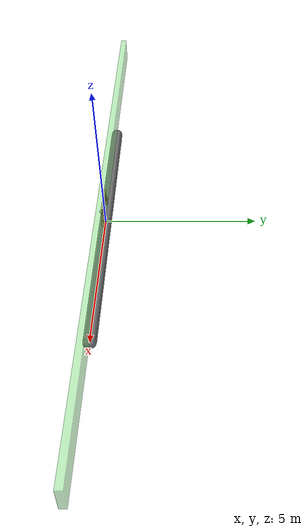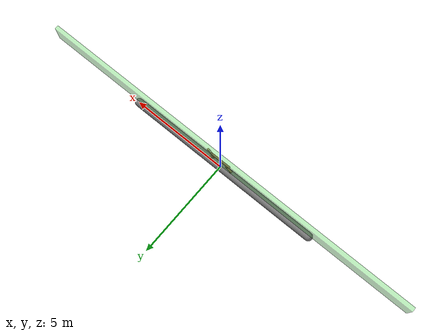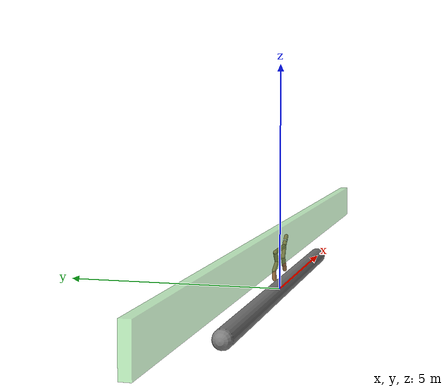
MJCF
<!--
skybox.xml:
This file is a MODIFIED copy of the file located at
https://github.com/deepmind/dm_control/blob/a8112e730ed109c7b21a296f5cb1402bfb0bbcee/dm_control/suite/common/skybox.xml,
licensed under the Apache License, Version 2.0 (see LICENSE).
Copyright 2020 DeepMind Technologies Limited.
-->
<mujoco model="cheetah">
  <include file="./common/skybox.xml"/>
  <include file="./common/visual.xml"/>
  <include file="./common/materials.xml"/>

  <compiler settotalmass="-1"/>

  <default>
    <default class="cheetah">
      <joint limited="true" damping=".01" armature=".1" stiffness="8" type="hinge" axis="0 1 0"/>
      <geom contype="0" conaffinity="1" condim="3" friction=".4 .1 .1" material="self"/>
    </default>
    <default class="free">
      <joint limited="false" damping="0" armature="0" stiffness="0"/>
    </default>
    <motor ctrllimited="true" ctrlrange="-1 1"/>
    <geom contype="0"/>
  </default>

  <statistic center="0 0 .7" extent="2"/>

  <option timestep="0.01" iterations="4" ls_iterations="8">
    <flag eulerdamp="disable"/>
  </option>

  <custom>
    <numeric data="6" name="max_contact_points"/>
    <numeric data="4" name="max_geom_pairs"/>
  </custom>

  <worldbody>
    <camera name="fix" pos="0 -10 0" quat="0.707 0.707 0 0" mode="fixed"/>
    <geom name="safe_box" type="box" pos="0 0 1.0" size="10 .1 0.42" rgba="0.5 0.9 0.5 0.5" mass="0"/>
    <body name="ground" pos="0 0 0" gravcomp="1">
      <joint name="ground_h" type="slide" axis="0 0 1"/>
      <geom name="ground" type="capsule" conaffinity="1" pos="0 0 0" fromto="-5. 0 0 5 0 0" size=".2" mass="100000"/>
    </body>
    <body name="torso" pos="0 0 .9" childclass="cheetah">
      <light name="light" pos="0 0 2" mode="trackcom"/>

      <camera name="side" pos="0 -3 0" quat="0.707 0.707 0 0" mode="trackcom"/>
      <camera name="back" pos="-1.8 -1.3 0.8" xyaxes="0.45 -0.9 0 0.3 0.15 0.94" mode="trackcom"/>
      <joint name="rootx" type="slide" axis="1 0 0" class="free"/>
      <joint name="rootz" type="slide" axis="0 0 1" class="free"/>
      <joint name="rooty" type="hinge" axis="0 1 0" class="free"/>
      <geom name="torso" type="capsule" fromto="-.5 0 0 .5 0 0" size="0.046"/>
      <geom name="head" type="capsule" pos=".6 0 .1" euler="0 50 0" size="0.046 .15"/>
      <geom name="head_pos" type="sphere" pos=".6 0 .1" size="0.05" rgba="1 1 1 1" mass="0"/>
      <body name="bthigh" pos="-.5 0 0">
        <joint name="bthigh" range="-30 60" stiffness="240" damping="6"/>
        <geom name="bthigh" type="capsule" pos=".1 0 -.13" euler="0 -218 0" size="0.046 .145"/>
        <body name="bshin" pos=".16 0 -.25">
          <joint name="bshin" range="-50 50" stiffness="180" damping="4.5"/>
          <geom name="bshin" type="capsule" pos="-.14 0 -.07" euler="0 -116 0" size="0.046 .15"/>
          <body name="bfoot" pos="-.28 0 -.14">
            <joint name="bfoot" range="-230 50" stiffness="120" damping="3"/>
            <geom name="bfoot" type="capsule" pos=".03 0 -.097" euler="0 -15 0" size="0.046 .094"/>
          </body>
        </body>
      </body>
      <body name="fthigh" pos=".5 0 0">
        <joint name="fthigh" range="-57 .40" stiffness="180" damping="4.5"/>
        <geom name="fthigh" type="capsule" pos="-.07 0 -.12" euler="0 30 0" size="0.046 .133"/>
        <body name="fshin" pos="-.14 0 -.24">
          <joint name="fshin" range="-70 50" stiffness="120" damping="3"/>
          <geom name="fshin" type="capsule" pos=".065 0 -.09" euler="0 -34 0" size="0.046 .106"/>
          <body name="ffoot" pos=".13 0 -.18">
            <joint name="ffoot" range="-28 28" stiffness="60" damping="1.5"/>
            <geom name="ffoot" type="capsule" pos=".045 0 -.07" euler="0 -34 0" size="0.046 .07"/>
          </body>
        </body>
      </body>
    </body>
  </worldbody>

  <sensor>
    <subtreelinvel name="torso_subtreelinvel" body="torso"/>
  </sensor>

  <actuator>
    <motor name="bthigh" joint="bthigh" gear="1200" />
    <motor name="bshin" joint="bshin" gear="900" />
    <motor name="bfoot" joint="bfoot" gear="600" />
    <motor name="fthigh" joint="fthigh" gear="900" />
    <motor name="fshin" joint="fshin" gear="600" />
    <motor name="ffoot" joint="ffoot" gear="300" />
    <motor name="ground_h" joint="ground_h" gear="2000" ctrlrange="-1 2" ctrllimited="true"/>
  </actuator>

  <contact>
    <pair geom1="ground" geom2="ffoot"/>
    <pair geom1="ground" geom2="bfoot"/>
  </contact>
</mujoco>

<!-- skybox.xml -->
<mujoco>
  <asset>
      <texture name="skybox" type="skybox" builtin="gradient" rgb1=".4 .6 .8" rgb2="0 0 0"
               width="800" height="800" mark="random" markrgb="1 1 1"/>
  </asset>
</mujoco>

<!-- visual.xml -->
<mujoco>
  <visual>
    <headlight ambient=".4 .4 .4" diffuse=".8 .8 .8" specular="0.1 0.1 0.1"/>
    <map znear=".01"/>
    <quality shadowsize="2048"/>
  </visual>
</mujoco>

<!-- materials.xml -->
<!--
Common textures, colors and materials to be used throughout this suite. Some
materials such as xxx_highlight are activated on occurence of certain events,
for example receiving a positive reward.
-->
<mujoco>
  <asset>
    <texture name="grid" type="2d" builtin="checker" rgb1=".1 .2 .3" rgb2=".2 .3 .4" width="300" height="300" mark="edge" markrgb=".2 .3 .4"/>
    <material name="grid" texture="grid" texrepeat="1 1" texuniform="true" reflectance=".2"/>
    <material name="gridbig" texture="grid" texrepeat="0.25 0.25" texuniform="true" reflectance=".2"/>

    <material name="self" rgba=".7 .5 .3 1"/>
    <material name="self_default" rgba=".7 .5 .3 1"/>
    <material name="self_highlight" rgba="0 .5 .3 1"/>

    <material name="effector" rgba=".7 .4 .2 1"/>
    <material name="effector_default" rgba=".7 .4 .2 1"/>
    <material name="effector_highlight" rgba="0 .5 .3 1"/>

    <material name="decoration" rgba=".3 .5 .7 1"/>

    <material name="eye" rgba="0 .2 1 1"/>

    <material name="target" rgba=".6 .3 .3 1"/>
    <material name="target_default" rgba=".6 .3 .3 1"/>
    <material name="target_highlight" rgba=".6 .3 .3 .4"/>
    <material name="site" rgba=".5 .5 .5 .3"/>

    <material name="wind" rgba=".98 .76 .37 .3"/>

    <material name="goal" rgba="0.55 0.72 0.26 .7"/>

    <material name="danger" rgba=".93 .33 .31 .9"/>
    <material name="danger_fill" rgba=".93 .33 .31 1."/>

    <texture name="gridlight" type="2d" builtin="checker" rgb1=".2 .3 .4" rgb2=".4 .5 .6" width="300" height="300" mark="edge" markrgb=".2 .3 .4"/>
    <material name="gridlight" texture="gridlight" texrepeat="1 1" texuniform="true" reflectance=".2"/>
  </asset>
</mujoco>
